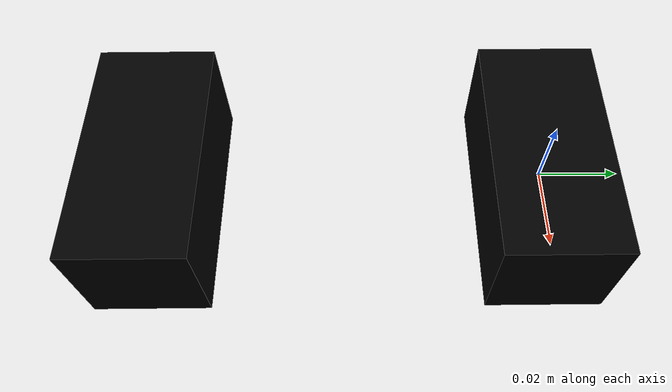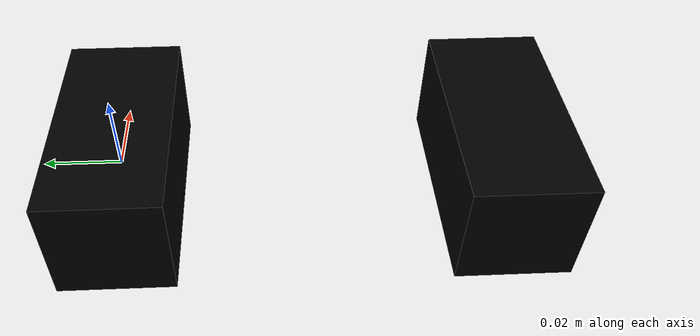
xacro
<?xml version="1.0"?>
<robot name="flying_stereo_cam" xmlns:xacro="http://ros.org/wiki/xacro">

  <xacro:include filename="$(find flying_stereo_cam)/flying_stereo_cam.gazebo.xacro" />
  <xacro:include filename="$(find flying_stereo_cam)/gazebo.urdf.xacro" />
  <xacro:include filename="$(find flying_stereo_cam)/materials.urdf.xacro" />
  <xacro:include filename="$(find flying_stereo_cam)/macros.xacro" />
  <xacro:include filename="$(find flying_stereo_cam)/stereo_cam.urdf.xacro" />

  <!-- materials for visualization -->
  <xacro:include filename="$(find flying_stereo_cam)/materials.urdf.xacro" />

  <xacro:stereo_cam />

  <!-- extensions -->
  <xacro:flying_stereo_cam_gazebo />

</robot>

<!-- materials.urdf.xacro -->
<robot>
  <material name="Orange">
    <color rgba="1.0 0.4 0.0 1.0"/>
  </material>
  <material name="Grey">
    <color rgba="0.7 0.7 0.7 1.0"/>
  </material>
  <material name="DarkGrey">
    <color rgba="0.3 0.3 0.3 1.0"/>
  </material>
  <material name="White">
    <color rgba="1.0 1.0 1.0 1.0"/>
  </material>
  <material name="Black">
    <color rgba="0.0 0.0 0.0 1.0"/>
  </material>
  <material name="Red">
    <color rgba="1.0 0.0 0.0 1.0"/>
  </material>
  <material name="Green">
    <color rgba="0.0 1.0 0.0 1.0"/>
  </material>
</robot>

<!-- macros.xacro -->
<robot>
  <macro name="cylinder_inertia" params="m r h">
    <inertia  ixx="${m*(3*r*r+h*h)/12}" ixy = "0" ixz = "0"
      iyy="${m*(3*r*r+h*h)/12}" iyz = "0"
      izz="${m*r*r/2}"
    />
  </macro>

  <macro name="box_inertia" params="m x y z">
    <inertia  ixx="${m*(y*y+z*z)/12}" ixy = "0" ixz = "0"
      iyy="${m*(x*x+z*z)/12}" iyz = "0"
      izz="${m*(x*x+z*z)/12}"
    />
  </macro>

  <macro name="sphere_inertia" params="m r">
    <inertia  ixx="${2*m*r*r/5}" ixy = "0" ixz = "0"
      iyy="${2*m*r*r/5}" iyz = "0"
      izz="${2*m*r*r/5}"
    />
  </macro>
</robot>

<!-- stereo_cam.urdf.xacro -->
<robot  xmlns:xacro="http://ros.org/wiki/xacro">

  <xacro:property name="M_PI" value="3.1415926535897931" />
  <xacro:property name="cameraSize" value="0.03"/>
  <xacro:property name="cameraMass" value="0.01"/>

  <xacro:macro name="stereo_cam">

    <link name="base" />

    <joint name="base_fix" type="fixed">
      <origin xyz="0 0 0" rpy="0 0 0" />
      <parent link="base"/>
      <child link="camera" />
    </joint>

    <link name="camera">
      <collision>
	<origin xyz="0 0 0" rpy="0 0 0"/>
	<geometry>
	  <box size="${cameraSize*2} ${cameraSize} ${cameraSize}"/>
	</geometry>
      </collision>

      <visual>
	<origin xyz="0 0 0" rpy="0 0 0"/>
	<geometry>
	  <box size="${cameraSize*2} ${cameraSize} ${cameraSize}"/>
	</geometry>
	<material name="Black"/>
      </visual>

      <inertial>
	<mass value="${cameraMass}" />
	<origin xyz="0 0 0" rpy="0 0 0"/>
	<box_inertia m="${cameraMass*2}" x="${cameraSize}" y="${cameraSize}" z="${cameraSize}" />
      </inertial>
    </link>

    <joint name="cameramount2" type="fixed">
      <!-- camera pointing forward or sideways -->
      <origin xyz="0 -0.10 0" rpy="0 0 0" />
      <parent link="camera"/>
      <child link="camera2" />
    </joint>

    <link name="camera2">
      <collision>
	<origin xyz="0 0 0" rpy="0 0 0"/>
	<geometry>
	  <box size="${cameraSize*2*0} ${cameraSize*0} ${cameraSize*0}"/>
	</geometry>
      </collision>

      <visual>
	<origin xyz="0 0 0" rpy="0 0 0"/>
	<geometry>
	  <box size="${cameraSize*2} ${cameraSize} ${cameraSize}"/>
	</geometry>
	<material name="Black"/>
      </visual>

      <inertial>
	<mass value="${cameraMass}" />
	<origin xyz="0 0 0" rpy="0 0 0"/>
	<box_inertia m="${cameraMass*2}" x="${cameraSize}" y="${cameraSize}" z="${cameraSize}" />
      </inertial>
    </link>
  </xacro:macro>

</robot>
